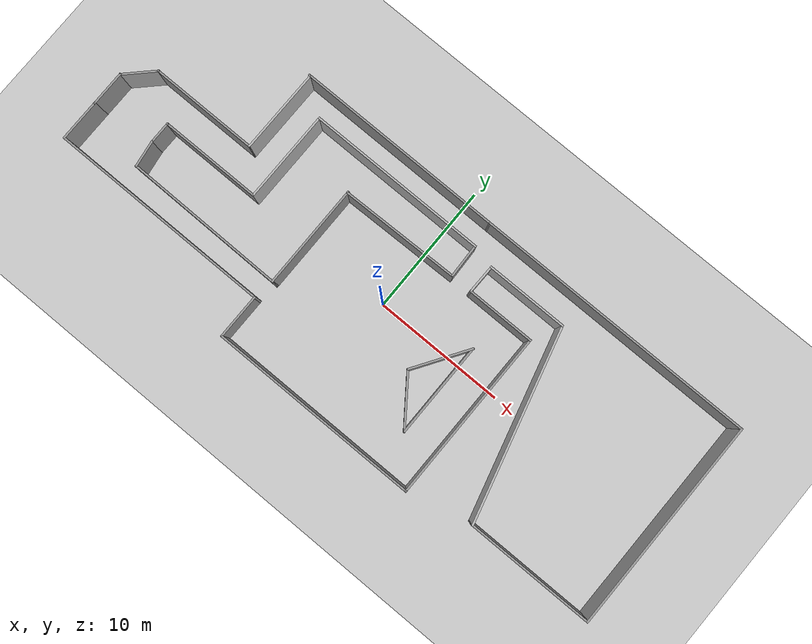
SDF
<?xml version="1.0" ?>
<sdf version="1.5">
   <plugin
  filename="ignition-gazebo-particle-emitter2-system"
  name="ignition::gazebo::systems::ParticleEmitter2">
  </plugin>
  <plugin
      filename="ignition-gazebo-sensors-system"
      name="ignition::gazebo::systems::Sensors">
      <render_engine>ogre2</render_engine>
    </plugin>
    <!-- Important: the world name should be the same as the filename -->
  <world name="industrial_plant">
    <plugin
      filename="ignition-gazebo-sensors-system"
      name="ignition::gazebo::systems::Sensors">
      <render_engine>ogre2</render_engine>
    </plugin>

  <physics name='4ms' type='ignored'>
            <max_step_size>0.004</max_step_size>
            <real_time_factor>1.0</real_time_factor>
    </physics>
    <plugin name='ignition::gazebo::systems::Physics' filename='ignition-gazebo-physics-system'/>
    <plugin name='ignition::gazebo::systems::UserCommands' filename='ignition-gazebo-user-commands-system'/>
    <plugin name='ignition::gazebo::systems::SceneBroadcaster' filename='ignition-gazebo-scene-broadcaster-system'/>
    <gui>
        <!-- World control -->
      <plugin filename="WorldControl" name="World control">
        <ignition-gui>
          <title>World control</title>
          <property type="bool" key="showTitleBar">false</property>
          <property type="bool" key="resizable">false</property>
          <property type="double" key="height">72</property>
          <property type="double" key="width">121</property>
          <property type="double" key="z">1</property>

          <property type="string" key="state">floating</property>
          <anchors target="3D View">
            <line own="left" target="left"/>
            <line own="bottom" target="bottom"/>
          </anchors>
        </ignition-gui>

        <play_pause>true</play_pause>
        <step>true</step>
        <start_paused>true</start_paused>

      </plugin>
        <plugin name='3D View' filename='GzScene3D'>
                <ignition-gui>
                    <title>3D View</title>
                    <property type='bool' key='showTitleBar'>0</property>
                    <property type='string' key='state'>docked</property>
                </ignition-gui>
                <engine>ogre2</engine>
                <scene>scene</scene>
                <ambient_light>0.4 0.4 0.4</ambient_light>
                <background_color>0.8 0.8 0.8</background_color>
                <camera_pose>-6 0 6 0 0.5 0</camera_pose>
        </plugin>
        <plugin name='World stats' filename='WorldStats'>
                <ignition-gui>
                    <title>World stats</title>
                    <property type='bool' key='showTitleBar'>0</property>
                    <property type='bool' key='resizable'>0</property>
                    <property type='double' key='height'>110</property>
                    <property type='double' key='width'>290</property>
                    <property type='double' key='z'>1</property>
                    <property type='string' key='state'>floating</property>
                    <anchors target='3D View'>
                        <line own='right' target='right'/>
                        <line own='bottom' target='bottom'/>
                    </anchors>
                </ignition-gui>
                <sim_time>1</sim_time>
                <real_time>1</real_time>
                <real_time_factor>1</real_time_factor>
                <iterations>1</iterations>
            </plugin>
        <plugin filename="KeyPublisher" name="Key publisher">
            <anchors target="3D View">
                        <line own="right" target="right"/>
                        <line own="top" target="top"/>
                    </anchors>
            <ignition-gui>

                <property key="resizable" type="bool">false</property>
                <property key="width" type="double">5</property>
                <property key="height" type="double">5</property>
                <property key="state" type="string">floating</property>
                <property key="showTitleBar" type="bool">false</property>
            </ignition-gui>
        </plugin>
    </gui>

    <!-- Shape of the UPO basement-->
    <include>
      <name>walls</name>
      <uri>industrial_plant</uri>
      <pose>0.000000 0.000000 0.000000 0 0 0.000000</pose>
    </include>

    <light name='sun' type='directional'>
      <cast_shadows>1</cast_shadows>
      <pose frame=''>0 0 10 0 -0 0</pose>
      <diffuse>0.8 0.8 0.8 1</diffuse>
      <specular>0.2 0.2 0.2 1</specular>
      <attenuation>
        <range>1000</range>
        <constant>0.9</constant>
        <linear>0.01</linear>
        <quadratic>0.001</quadratic>
      </attenuation>
      <direction>-0.5 0.1 -0.9</direction>
    </light>

    <model name="ground_plane">
      <static>true</static>
      <link name="link">
        <collision name="collision">
          <geometry>
            <plane>
              <normal>0 0 1</normal>
              <size>100 100</size>
            </plane>
          </geometry>
        </collision>
        <visual name="visual">
          <geometry>
            <plane>
              <normal>0 0 1</normal>
              <size>100 100</size>
            </plane>
          </geometry>
          <material>
            <ambient>0.8 0.8 0.8 1</ambient>
            <diffuse>0.8 0.8 0.8 1</diffuse>
            <specular>0.8 0.8 0.8 1</specular>
          </material>
        </visual>
      </link>
      <static>true</static>
    </model>

    <gravity>0 0 -9.8</gravity>

    <magnetic_field>6e-06 2.3e-05 -4.2e-05</magnetic_field>

    <atmosphere type='adiabatic'/>

    <light name='user_spot_light_0' type='spot'>
      <diffuse>0.5 0.5 0.5 1</diffuse>
      <specular>0.1 0.1 0.1 1</specular>
      <direction>0 0 -1</direction>
      <attenuation>
        <range>20</range>
        <constant>0.5</constant>
        <linear>0.01</linear>
        <quadratic>0.001</quadratic>
      </attenuation>
      <cast_shadows>0</cast_shadows>
      <spot>
        <inner_angle>0.6</inner_angle>
        <outer_angle>1</outer_angle>
        <falloff>1</falloff>
      </spot>
    </light>

  </world>
</sdf>

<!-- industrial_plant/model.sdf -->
<sdf version='1.7'>
  <model name='industrial_plant2'>
    <pose>5.94376 1.45471 0 0 -0 0</pose>
    <link name='Wall_0'>
      <collision name='Wall_0_Collision'>
        <geometry>
          <box>
            <size>1.75 0.15 2.5</size>
          </box>
        </geometry>
        <pose>0 0 1.25 0 -0 0</pose>
      </collision>
      <visual name='Wall_0_Visual'>
        <pose>0 0 1.25 0 -0 0</pose>
        <geometry>
          <box>
            <size>1.75 0.15 2.5</size>
          </box>
        </geometry>
        <material>
          <script>
            <uri>file://media/materials/scripts/gazebo.material</uri>
            <name>Gazebo/Grey</name>
          </script>
        </material>
        <meta>
          <layer>0</layer>
        </meta>
      </visual>
      <pose>-18.7966 -0.887855 0 0 -0 1.5708</pose>
    </link>
    <link name='Wall_1'>
      <collision name='Wall_1_Collision'>
        <geometry>
          <box>
            <size>7.75 0.15 2.5</size>
          </box>
        </geometry>
        <pose>0 0 1.25 0 -0 0</pose>
      </collision>
      <visual name='Wall_1_Visual'>
        <pose>0 0 1.25 0 -0 0</pose>
        <geometry>
          <box>
            <size>7.75 0.15 2.5</size>
          </box>
        </geometry>
        <material>
          <script>
            <uri>file://media/materials/scripts/gazebo.material</uri>
            <name>Gazebo/Grey</name>
          </script>
        </material>
        <meta>
          <layer>0</layer>
        </meta>
      </visual>
      <pose>-14.9966 -0.087855 0 0 -0 0</pose>
    </link>
    <link name='Wall_10'>
      <collision name='Wall_10_Collision'>
        <geometry>
          <box>
            <size>13 0.15 2.5</size>
          </box>
        </geometry>
        <pose>0 0 1.25 0 -0 0</pose>
      </collision>
      <visual name='Wall_10_Visual'>
        <pose>0 0 1.25 0 -0 0</pose>
        <geometry>
          <box>
            <size>13 0.15 2.5</size>
          </box>
        </geometry>
        <material>
          <script>
            <uri>file://media/materials/scripts/gazebo.material</uri>
            <name>Gazebo/Grey</name>
          </script>
        </material>
        <meta>
          <layer>0</layer>
        </meta>
      </visual>
      <pose>9.19615 -2.18253 0 0 -0 1.5708</pose>
    </link>
    <link name='Wall_11'>
      <collision name='Wall_11_Collision'>
        <geometry>
          <box>
            <size>5.25 0.15 2.5</size>
          </box>
        </geometry>
        <pose>0 0 1.25 0 -0 0</pose>
      </collision>
      <visual name='Wall_11_Visual'>
        <pose>0 0 1.25 0 -0 0</pose>
        <geometry>
          <box>
            <size>5.25 0.15 2.5</size>
          </box>
        </geometry>
        <material>
          <script>
            <uri>file://media/materials/scripts/gazebo.material</uri>
            <name>Gazebo/Grey</name>
          </script>
        </material>
        <meta>
          <layer>0</layer>
        </meta>
      </visual>
      <pose>6.64615 4.24247 0 0 -0 3.14159</pose>
    </link>
    <link name='Wall_13'>
      <collision name='Wall_13_Collision'>
        <geometry>
          <box>
            <size>9.10853 0.15 2.5</size>
          </box>
        </geometry>
        <pose>0 0 1.25 0 -0 0</pose>
      </collision>
      <visual name='Wall_13_Visual'>
        <pose>0 0 1.25 0 -0 0</pose>
        <geometry>
          <box>
            <size>9.10853 0.15 2.5</size>
          </box>
        </geometry>
        <material>
          <script>
            <uri>file://media/materials/scripts/gazebo.material</uri>
            <name>Gazebo/Grey</name>
          </script>
        </material>
        <meta>
          <layer>0</layer>
        </meta>
      </visual>
      <pose>-1.9766 4.16268 0 0 -0 -3.12271</pose>
    </link>
    <link name='Wall_14'>
      <collision name='Wall_14_Collision'>
        <geometry>
          <box>
            <size>7.97342 0.15 2.5</size>
          </box>
        </geometry>
        <pose>0 0 1.25 0 -0 0</pose>
      </collision>
      <visual name='Wall_14_Visual'>
        <pose>0 0 1.25 0 -0 0</pose>
        <geometry>
          <box>
            <size>7.97342 0.15 2.5</size>
          </box>
        </geometry>
        <material>
          <script>
            <uri>file://media/materials/scripts/gazebo.material</uri>
            <name>Gazebo/Grey</name>
          </script>
        </material>
        <meta>
          <layer>0</layer>
        </meta>
      </visual>
      <pose>-6.44838 0.212909 0 0 -0 -1.56909</pose>
    </link>
    <link name='Wall_15'>
      <collision name='Wall_15_Collision'>
        <geometry>
          <box>
            <size>12.2238 0.15 2.5</size>
          </box>
        </geometry>
        <pose>0 0 1.25 0 -0 0</pose>
      </collision>
      <visual name='Wall_15_Visual'>
        <pose>0 0 1.25 0 -0 0</pose>
        <geometry>
          <box>
            <size>12.2238 0.15 2.5</size>
          </box>
        </geometry>
        <material>
          <script>
            <uri>file://media/materials/scripts/gazebo.material</uri>
            <name>Gazebo/Grey</name>
          </script>
        </material>
        <meta>
          <layer>0</layer>
        </meta>
      </visual>
      <pose>-12.4784 -3.65224 0 0 -0 3.13388</pose>
    </link>
    <link name='Wall_16'>
      <collision name='Wall_16_Collision'>
        <geometry>
          <box>
            <size>2.08837 0.15 2.5</size>
          </box>
        </geometry>
        <pose>0 0 1.25 0 -0 0</pose>
      </collision>
      <visual name='Wall_16_Visual'>
        <pose>0 0 1.25 0 -0 0</pose>
        <geometry>
          <box>
            <size>2.08837 0.15 2.5</size>
          </box>
        </geometry>
        <material>
          <script>
            <uri>file://media/materials/scripts/gazebo.material</uri>
            <name>Gazebo/Grey</name>
          </script>
        </material>
        <meta>
          <layer>0</layer>
        </meta>
      </visual>
      <pose>-18.6558 -2.64677 0 0 -0 1.71652</pose>
    </link>
    <link name='Wall_19'>
      <collision name='Wall_19_Collision'>
        <geometry>
          <box>
            <size>21.5 0.15 2.5</size>
          </box>
        </geometry>
        <pose>0 0 1.25 0 -0 0</pose>
      </collision>
      <visual name='Wall_19_Visual'>
        <pose>0 0 1.25 0 -0 0</pose>
        <geometry>
          <box>
            <size>21.5 0.15 2.5</size>
          </box>
        </geometry>
        <material>
          <script>
            <uri>file://media/materials/scripts/gazebo.material</uri>
            <name>Gazebo/Grey</name>
          </script>
        </material>
        <meta>
          <layer>0</layer>
        </meta>
      </visual>
      <pose>12.8599 8.59432 0 0 -0 0</pose>
    </link>
    <link name='Wall_20'>
      <collision name='Wall_20_Collision'>
        <geometry>
          <box>
            <size>16.25 0.15 2.5</size>
          </box>
        </geometry>
        <pose>0 0 1.25 0 -0 0</pose>
      </collision>
      <visual name='Wall_20_Visual'>
        <pose>0 0 1.25 0 -0 0</pose>
        <geometry>
          <box>
            <size>16.25 0.15 2.5</size>
          </box>
        </geometry>
        <material>
          <script>
            <uri>file://media/materials/scripts/gazebo.material</uri>
            <name>Gazebo/Grey</name>
          </script>
        </material>
        <meta>
          <layer>0</layer>
        </meta>
      </visual>
      <pose>23.5349 0.544323 0 0 -0 -1.5708</pose>
    </link>
    <link name='Wall_21'>
      <collision name='Wall_21_Collision'>
        <geometry>
          <box>
            <size>9.75 0.15 2.5</size>
          </box>
        </geometry>
        <pose>0 0 1.25 0 -0 0</pose>
      </collision>
      <visual name='Wall_21_Visual'>
        <pose>0 0 1.25 0 -0 0</pose>
        <geometry>
          <box>
            <size>9.75 0.15 2.5</size>
          </box>
        </geometry>
        <material>
          <script>
            <uri>file://media/materials/scripts/gazebo.material</uri>
            <name>Gazebo/Grey</name>
          </script>
        </material>
        <meta>
          <layer>0</layer>
        </meta>
      </visual>
      <pose>18.7349 -7.50568 0 0 -0 3.14159</pose>
    </link>
    <link name='Wall_22'>
      <collision name='Wall_22_Collision'>
        <geometry>
          <box>
            <size>14.5 0.15 2.5</size>
          </box>
        </geometry>
        <pose>0 0 1.25 0 -0 0</pose>
      </collision>
      <visual name='Wall_22_Visual'>
        <pose>0 0 1.25 0 -0 0</pose>
        <geometry>
          <box>
            <size>14.5 0.15 2.5</size>
          </box>
        </geometry>
        <material>
          <pbr>
            <metal>
              <albedo_map>texture.jpg</albedo_map>
              <specular_map>texture.jpg</specular_map>
            </metal>
          </pbr>
        </material>
        <meta>
          <layer>0</layer>
        </meta>
      </visual>
      <pose>12.0779 -0.575159 0 0 -0 1.8326</pose>
    </link>
    <link name='Wall_23'>
      <collision name='Wall_23_Collision'>
        <geometry>
          <box>
            <size>6.25 0.15 2.5</size>
          </box>
        </geometry>
        <pose>0 0 1.25 0 -0 0</pose>
      </collision>
      <visual name='Wall_23_Visual'>
        <pose>0 0 1.25 0 -0 0</pose>
        <geometry>
          <box>
            <size>6.25 0.15 2.5</size>
          </box>
        </geometry>
        <material>
          <pbr>
            <metal>
              <albedo_map>texture.jpg</albedo_map>
              <specular_map>texture.jpg</specular_map>
            </metal>
          </pbr>
        </material>
        <meta>
          <layer>0</layer>
        </meta>
      </visual>
      <pose>7.17086 6.35536 0 0 -0 3.14159</pose>
    </link>
    <link name='Wall_24'>
      <collision name='Wall_24_Collision'>
        <geometry>
          <box>
            <size>2.26303 0.15 2.5</size>
          </box>
        </geometry>
        <pose>0 0 1.25 0 -0 0</pose>
      </collision>
      <visual name='Wall_24_Visual'>
        <pose>0 0 1.25 0 -0 0</pose>
        <geometry>
          <box>
            <size>2.26303 0.15 2.5</size>
          </box>
        </geometry>
        <material>
          <pbr>
            <metal>
              <albedo_map>texture.jpg</albedo_map>
              <specular_map>texture.jpg</specular_map>
            </metal>
          </pbr>
        </material>
        <meta>
          <layer>0</layer>
        </meta>
      </visual>
      <pose>4.10851 5.29892 0 0 -0 -1.58249</pose>
    </link>
    <link name='Wall_26'>
      <collision name='Wall_26_Collision'>
        <geometry>
          <box>
            <size>7 0.15 2.5</size>
          </box>
        </geometry>
        <pose>0 0 1.25 0 -0 0</pose>
      </collision>
      <visual name='Wall_26_Visual'>
        <pose>0 0 1.25 0 -0 0</pose>
        <geometry>
          <box>
            <size>7 0.15 2.5</size>
          </box>
        </geometry>
        <material>
          <pbr>
            <metal>
              <albedo_map>texture.jpg</albedo_map>
              <specular_map>texture.jpg</specular_map>
            </metal>
          </pbr>
        </material>
        <meta>
          <layer>0</layer>
        </meta>
      </visual>
      <pose>-11.1966 3.33715 0 0 -0 1.5708</pose>
    </link>
    <link name='Wall_27'>
      <collision name='Wall_27_Collision'>
        <geometry>
          <box>
            <size>13.75 0.15 2.5</size>
          </box>
        </geometry>
        <pose>0 0 1.25 0 -0 0</pose>
      </collision>
      <visual name='Wall_27_Visual'>
        <pose>0 0 1.25 0 -0 0</pose>
        <geometry>
          <box>
            <size>13.75 0.15 2.5</size>
          </box>
        </geometry>
        <material>
          <pbr>
            <metal>
              <albedo_map>texture.jpg</albedo_map>
              <specular_map>texture.jpg</specular_map>
            </metal>
          </pbr>

        </material>
        <meta>
          <layer>0</layer>
        </meta>
      </visual>
      <pose>-4.39656 6.76215 0 0 -0 0</pose>
    </link>
    <link name='Wall_29'>
      <collision name='Wall_29_Collision'>
        <geometry>
          <box>
            <size>6.43628 0.15 2.5</size>
          </box>
        </geometry>
        <pose>0 0 1.25 0 -0 0</pose>
      </collision>
      <visual name='Wall_29_Visual'>
        <pose>0 0 1.25 0 -0 0</pose>
        <geometry>
          <box>
            <size>6.43628 0.15 2.5</size>
          </box>
        </geometry>
        <material>
          <pbr>
            <metal>
              <albedo_map>texture.jpg</albedo_map>
              <specular_map>texture.jpg</specular_map>
            </metal>
          </pbr>
        </material>
        <meta>
          <layer>0</layer>
        </meta>
      </visual>
      <pose>-13.5561 5.4241 0 0 -0 1.56785</pose>
    </link>
    <link name='Wall_3'>
      <collision name='Wall_3_Collision'>
        <geometry>
          <box>
            <size>8.25 0.15 2.5</size>
          </box>
        </geometry>
        <pose>0 0 1.25 0 -0 0</pose>
      </collision>
      <visual name='Wall_3_Visual'>
        <pose>0 0 1.25 0 -0 0</pose>
        <geometry>
          <box>
            <size>8.25 0.15 2.5</size>
          </box>
        </geometry>
        <material>
          <script>
            <uri>file://media/materials/scripts/gazebo.material</uri>
            <name>Gazebo/Grey</name>
          </script>
        </material>
        <meta>
          <layer>0</layer>
        </meta>
      </visual>
      <pose>-17.6154 2.28095 0 0 -0 3.14159</pose>
    </link>
    <link name='Wall_31'>
      <collision name='Wall_31_Collision'>
        <geometry>
          <box>
            <size>15.9622 0.15 2.5</size>
          </box>
        </geometry>
        <pose>0 0 1.25 0 -0 0</pose>
      </collision>
      <visual name='Wall_31_Visual'>
        <pose>0 0 1.25 0 -0 0</pose>
        <geometry>
          <box>
            <size>15.9622 0.15 2.5</size>
          </box>
        </geometry>
        <material>
          <script>
            <uri>file://media/materials/scripts/gazebo.material</uri>
            <name>Gazebo/Grey</name>
          </script>
        </material>
        <meta>
          <layer>0</layer>
        </meta>
      </visual>
      <pose>-5.72119 8.60089 0 0 -0 3.14076</pose>
    </link>
    <link name='Wall_33'>
      <collision name='Wall_33_Collision'>
        <geometry>
          <box>
            <size>2.62032 0.15 2.5</size>
          </box>
        </geometry>
        <pose>0 0 1.25 0 -0 0</pose>
      </collision>
      <visual name='Wall_33_Visual'>
        <pose>0 0 1.25 0 -0 0</pose>
        <geometry>
          <box>
            <size>2.62032 0.15 2.5</size>
          </box>
        </geometry>
        <material>
          <script>
            <uri>file://media/materials/scripts/gazebo.material</uri>
            <name>Gazebo/Grey</name>
          </script>
        </material>
        <meta>
          <layer>0</layer>
        </meta>
      </visual>
      <pose>2.45265 5.52797 0 0 -0 1.61065</pose>
    </link>
    <link name='Wall_35'>
      <collision name='Wall_35_Collision'>
        <geometry>
          <box>
            <size>4.63765 0.15 2.5</size>
          </box>
        </geometry>
        <pose>0 0 1.25 0 -0 0</pose>
      </collision>
      <visual name='Wall_35_Visual'>
        <pose>0 0 1.25 0 -0 0</pose>
        <geometry>
          <box>
            <size>4.63765 0.15 2.5</size>
          </box>
        </geometry>
        <material>
          <script>
            <uri>file://media/materials/scripts/gazebo.material</uri>
            <name>Gazebo/Grey</name>
          </script>
        </material>
        <meta>
          <layer>0</layer>
        </meta>
      </visual>
      <pose>5.43209 -0.499336 0 0 -0 0.999219</pose>
    </link>
    <link name='Wall_36'>
      <collision name='Wall_36_Collision'>
        <geometry>
          <box>
            <size>7.20993 0.15 2.5</size>
          </box>
        </geometry>
        <pose>0 0 1.25 0 -0 0</pose>
      </collision>
      <visual name='Wall_36_Visual'>
        <pose>0 0 1.25 0 -0 0</pose>
        <geometry>
          <box>
            <size>7.20993 0.15 2.5</size>
          </box>
        </geometry>
        <material>
          <script>
            <uri>file://media/materials/scripts/gazebo.material</uri>
            <name>Gazebo/Grey</name>
          </script>
        </material>
        <meta>
          <layer>0</layer>
        </meta>
      </visual>
      <pose>6.64591 -2.14214 0 0 -0 -1.5708</pose>
    </link>
    <link name='Wall_37'>
      <collision name='Wall_37_Collision'>
        <geometry>
          <box>
            <size>4.23517 0.15 2.5</size>
          </box>
        </geometry>
        <pose>0 0 1.25 0 -0 0</pose>
      </collision>
      <visual name='Wall_37_Visual'>
        <pose>0 0 1.25 0 -0 0</pose>
        <geometry>
          <box>
            <size>4.23517 0.15 2.5</size>
          </box>
        </geometry>
        <material>
          <script>
            <uri>file://media/materials/scripts/gazebo.material</uri>
            <name>Gazebo/Grey</name>
          </script>
        </material>
        <meta>
          <layer>0</layer>
        </meta>
      </visual>
      <pose>5.43209 -4.05989 0 0 -0 2.20714</pose>
    </link>
    <link name='Wall_4'>
      <collision name='Wall_4_Collision'>
        <geometry>
          <box>
            <size>2.75 0.15 2.5</size>
          </box>
        </geometry>
        <pose>0 0 1.25 0 -0 0</pose>
      </collision>
      <visual name='Wall_4_Visual'>
        <pose>0 0 1.25 0 -0 0</pose>
        <geometry>
          <box>
            <size>2.75 0.15 2.5</size>
          </box>
        </geometry>
        <material>
          <script>
            <uri>file://media/materials/scripts/gazebo.material</uri>
            <name>Gazebo/Grey</name>
          </script>
        </material>
        <meta>
          <layer>0</layer>
        </meta>
      </visual>
      <pose>-22.5846 1.36171 0 0 -0 -2.35619</pose>
    </link>
    <link name='Wall_5'>
      <collision name='Wall_5_Collision'>
        <geometry>
          <box>
            <size>2.75 0.15 2.5</size>
          </box>
        </geometry>
        <pose>0 0 1.25 0 -0 0</pose>
      </collision>
      <visual name='Wall_5_Visual'>
        <pose>0 0 1.25 0 -0 0</pose>
        <geometry>
          <box>
            <size>2.75 0.15 2.5</size>
          </box>
        </geometry>
        <material>
          <script>
            <uri>file://media/materials/scripts/gazebo.material</uri>
            <name>Gazebo/Grey</name>
          </script>
        </material>
        <meta>
          <layer>0</layer>
        </meta>
      </visual>
      <pose>-23.5038 -0.857525 0 0 -0 -1.5708</pose>
    </link>
    <link name='Wall_6'>
      <collision name='Wall_6_Collision'>
        <geometry>
          <box>
            <size>3.25 0.15 2.5</size>
          </box>
        </geometry>
        <pose>0 0 1.25 0 -0 0</pose>
      </collision>
      <visual name='Wall_6_Visual'>
        <pose>0 0 1.25 0 -0 0</pose>
        <geometry>
          <box>
            <size>3.25 0.15 2.5</size>
          </box>
        </geometry>
        <material>
          <script>
            <uri>file://media/materials/scripts/gazebo.material</uri>
            <name>Gazebo/Grey</name>
          </script>
        </material>
        <meta>
          <layer>0</layer>
        </meta>
      </visual>
      <pose>-23.5038 -3.70752 0 0 -0 -1.5708</pose>
    </link>
    <link name='Wall_7'>
      <collision name='Wall_7_Collision'>
        <geometry>
          <box>
            <size>17 0.15 2.5</size>
          </box>
        </geometry>
        <pose>0 0 1.25 0 -0 0</pose>
      </collision>
      <visual name='Wall_7_Visual'>
        <pose>0 0 1.25 0 -0 0</pose>
        <geometry>
          <box>
            <size>17 0.15 2.5</size>
          </box>
        </geometry>
        <material>
          <script>
            <uri>file://media/materials/scripts/gazebo.material</uri>
            <name>Gazebo/Grey</name>
          </script>
        </material>
        <meta>
          <layer>0</layer>
        </meta>
      </visual>
      <pose>-15.0788 -5.25753 0 0 -0 0</pose>
    </link>
    <link name='Wall_8'>
      <collision name='Wall_8_Collision'>
        <geometry>
          <box>
            <size>3.5 0.15 2.5</size>
          </box>
        </geometry>
        <pose>0 0 1.25 0 -0 0</pose>
      </collision>
      <visual name='Wall_8_Visual'>
        <pose>0 0 1.25 0 -0 0</pose>
        <geometry>
          <box>
            <size>3.5 0.15 2.5</size>
          </box>
        </geometry>
        <material>
          <script>
            <uri>file://media/materials/scripts/gazebo.material</uri>
            <name>Gazebo/Grey</name>
          </script>
        </material>
        <meta>
          <layer>0</layer>
        </meta>
      </visual>
      <pose>-6.65385 -6.93253 0 0 -0 -1.5708</pose>
    </link>
    <link name='Wall_9'>
      <collision name='Wall_9_Collision'>
        <geometry>
          <box>
            <size>16 0.15 2.5</size>
          </box>
        </geometry>
        <pose>0 0 1.25 0 -0 0</pose>
      </collision>
      <visual name='Wall_9_Visual'>
        <pose>0 0 1.25 0 -0 0</pose>
        <geometry>
          <box>
            <size>16 0.15 2.5</size>
          </box>
        </geometry>
        <material>
          <script>
            <uri>file://media/materials/scripts/gazebo.material</uri>
            <name>Gazebo/Grey</name>
          </script>
        </material>
        <meta>
          <layer>0</layer>
        </meta>
      </visual>
      <pose>1.27115 -8.60753 0 0 -0 0</pose>
    </link>
    <static>1</static>
  </model>
</sdf>
